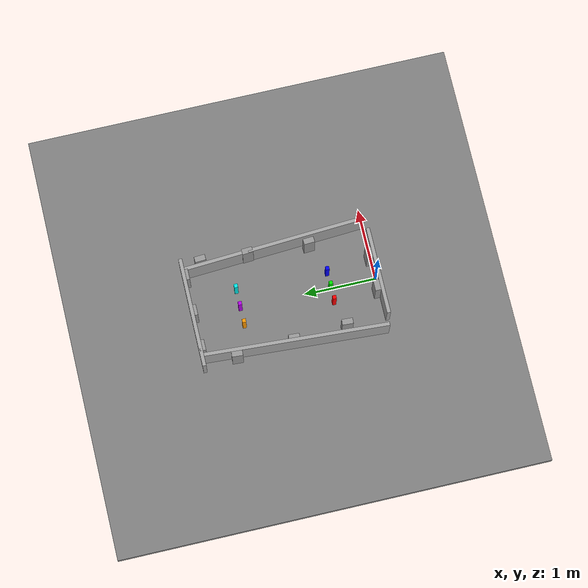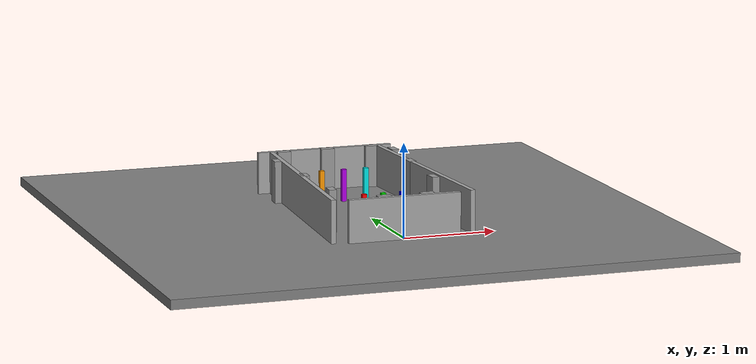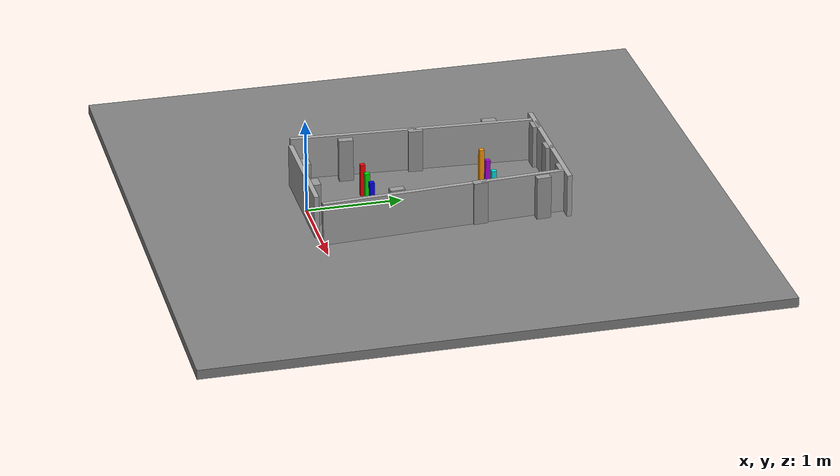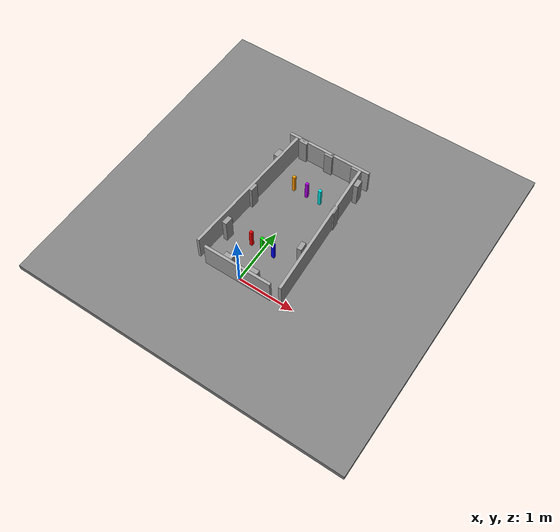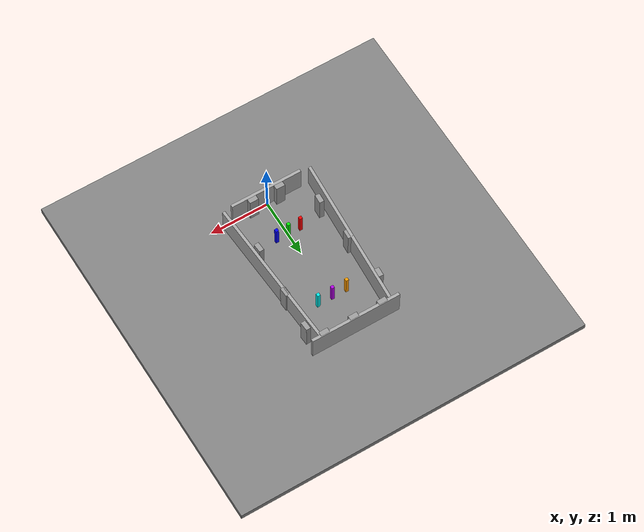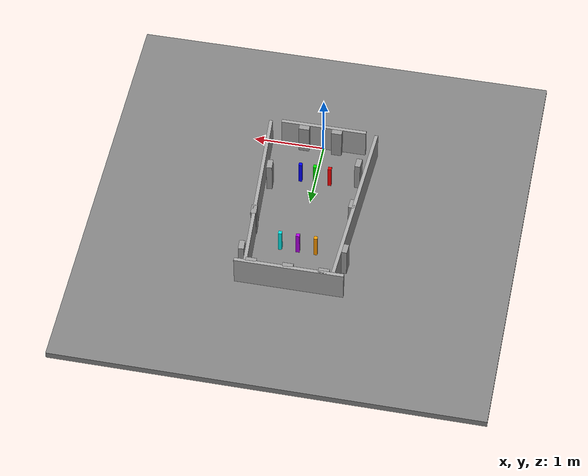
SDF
<?xml version="1.0" ?>
<sdf version="1.7">

  <world name="nav_room">

    <gravity>0 0 -9.8</gravity>
    <magnetic_field>6e-6 2.3e-5 -4.2e-5</magnetic_field>
    <atmosphere type="adiabatic"/>

    <scene>
      <ambient>0.4 0.4 0.4 1</ambient>
      <background>0.7 0.7 0.7 1</background>
      <shadows>true</shadows>
    </scene>

    <physics name='1ms' type='ignored'>
      <max_step_size>0.001</max_step_size>
      <real_time_factor>1</real_time_factor>
      <real_time_update_rate>1000</real_time_update_rate>
    </physics>

    <plugin name='gz::sim::systems::Physics' filename='gz-sim-physics-system'/>
    <plugin name='gz::sim::systems::UserCommands' filename='gz-sim-user-commands-system'/>
    <plugin name='gz::sim::systems::SceneBroadcaster' filename='gz-sim-scene-broadcaster-system'/>
    <plugin name='gz::sim::systems::Contact' filename='gz-sim-contact-system'/>
    <plugin name='gz::sim::systems::Sensors' filename='gz-sim-sensors-system'>
      <render_engine>ogre2</render_engine>
    </plugin>

    <!-- LIGHT -->

    <light name="sun_light" type="directional">
      <cast_shadows>true</cast_shadows>
      <pose>0 1.27 20 0 0 0</pose>
      <diffuse>1 1 1 1</diffuse>
      <specular>0.2 0.2 0.2 1</specular>
      <attenuation>
        <range>1000</range>
        <constant>0.9</constant>
        <linear>0.01</linear>
        <quadratic>0.001</quadratic>
      </attenuation>
      <direction>-0.5 0.1 -1</direction>
    </light>

    <!-- GROUND -->
    <!-- Smooth flat floor. Centred at (0, 1.27, -0.05) so top
         face sits at z=0. -->

    <model name="ground">
      <static>true</static>
      <pose>0 1.27 -0.05 0 0 0</pose>
      <link name="ground_link">
        <collision name="ground_collision">
          <geometry>
            <box><size>6 6 0.1</size></box>
          </geometry>
          <surface>
            <friction>
              <ode><mu>1.0</mu><mu2>1.0</mu2></ode>
            </friction>
            <contact><ode/></contact>
          </surface>
        </collision>
        <visual name="ground_visual">
          <geometry>
            <box><size>6 6 0.1</size></box>
          </geometry>
          <material>
            <ambient>0.45 0.45 0.45 1</ambient>
            <diffuse>0.5 0.5 0.5 1</diffuse>
          </material>
        </visual>
      </link>
    </model>

    <!-- South wall (narrow end, y=0) -->
    <model name="south_wall">
      <static>true</static>
      <!-- Centre x=0, y=-0.025 (outer face), z=half-height -->
      <pose>0 -0.025 0.2286 0 0 0</pose>
      <link name="link">
        <collision name="collision">
          <geometry><box><size>1.2192 0.05 0.4572</size></box></geometry>
        </collision>
        <visual name="visual">
          <geometry><box><size>1.2192 0.05 0.4572</size></box></geometry>
          <material>
            <ambient>0.55 0.55 0.55 1</ambient>
            <diffuse>0.65 0.65 0.65 1</diffuse>
          </material>
        </visual>
      </link>
    </model>

    <!-- North wall (wide end, y=2.54) -->
    <model name="north_wall">
      <static>true</static>
      <pose>0 2.565 0.2286 0 0 0</pose>
      <link name="link">
        <collision name="collision">
          <geometry><box><size>1.5240 0.05 0.4572</size></box></geometry>
        </collision>
        <visual name="visual">
          <geometry><box><size>1.5240 0.05 0.4572</size></box></geometry>
          <material>
            <ambient>0.55 0.55 0.55 1</ambient>
            <diffuse>0.65 0.65 0.65 1</diffuse>
          </material>
        </visual>
      </link>
    </model>

    <!-- West wall (angled, runs SW to NW)
         Length = 2.5446m, angle = -3.4336 deg = -0.059928 rad about Z
         Centre at (-0.6858, 1.2700) -->
    <model name="west_wall">
      <static>true</static>
      <pose>-0.6858 1.2700 0.2286 0 0 -0.059928</pose>
      <link name="link">
        <collision name="collision">
          <geometry><box><size>0.05 2.5446 0.4572</size></box></geometry>
        </collision>
        <visual name="visual">
          <geometry><box><size>0.05 2.5446 0.4572</size></box></geometry>
          <material>
            <ambient>0.55 0.55 0.55 1</ambient>
            <diffuse>0.65 0.65 0.65 1</diffuse>
          </material>
        </visual>
      </link>
    </model>

    <!-- East wall (angled, runs SE to NE)
         Same length, angle = +3.4336 deg = +0.059928 rad about Z
         Centre at (0.6858, 1.2700) -->
    <model name="east_wall">
      <static>true</static>
      <pose>0.6858 1.2700 0.2286 0 0 0.059928</pose>
      <link name="link">
        <collision name="collision">
          <geometry><box><size>0.05 2.5446 0.4572</size></box></geometry>
        </collision>
        <visual name="visual">
          <geometry><box><size>0.05 2.5446 0.4572</size></box></geometry>
          <material>
            <ambient>0.55 0.55 0.55 1</ambient>
            <diffuse>0.65 0.65 0.65 1</diffuse>
          </material>
        </visual>
      </link>
    </model>

    <!-- South wall pilasters -->
    <model name="s_pilaster_1">
      <static>true</static>
      <!-- x=-0.20, against south wall inner face y=0, protrudes inward -->
      <pose>-0.20 0.04 0.2286 0 0 0</pose>
      <link name="link">
        <collision name="collision">
          <geometry><box><size>0.15 0.08 0.4572</size></box></geometry>
        </collision>
        <visual name="visual">
          <geometry><box><size>0.15 0.08 0.4572</size></box></geometry>
          <material>
            <ambient>0.5 0.5 0.5 1</ambient>
            <diffuse>0.6 0.6 0.6 1</diffuse>
          </material>
        </visual>
      </link>
    </model>

    <model name="s_pilaster_2">
      <static>true</static>
      <pose>0.27 0.04 0.2286 0 0 0</pose>
      <link name="link">
        <collision name="collision">
          <geometry><box><size>0.15 0.08 0.4572</size></box></geometry>
        </collision>
        <visual name="visual">
          <geometry><box><size>0.15 0.08 0.4572</size></box></geometry>
          <material>
            <ambient>0.5 0.5 0.5 1</ambient>
            <diffuse>0.6 0.6 0.6 1</diffuse>
          </material>
        </visual>
      </link>
    </model>

    <!-- North wall pilasters -->
    <model name="n_pilaster_1">
      <static>true</static>
      <pose>-0.48 2.536 0.2286 0 0 0</pose>
      <link name="link">
        <collision name="collision">
          <geometry><box><size>0.15 0.08 0.4572</size></box></geometry>
        </collision>
        <visual name="visual">
          <geometry><box><size>0.15 0.08 0.4572</size></box></geometry>
          <material>
            <ambient>0.5 0.5 0.5 1</ambient>
            <diffuse>0.6 0.6 0.6 1</diffuse>
          </material>
        </visual>
      </link>
    </model>

    <model name="n_pilaster_2">
      <static>true</static>
      <pose>0.02 2.536 0.2286 0 0 0</pose>
      <link name="link">
        <collision name="collision">
          <geometry><box><size>0.15 0.08 0.4572</size></box></geometry>
        </collision>
        <visual name="visual">
          <geometry><box><size>0.15 0.08 0.4572</size></box></geometry>
          <material>
            <ambient>0.5 0.5 0.5 1</ambient>
            <diffuse>0.6 0.6 0.6 1</diffuse>
          </material>
        </visual>
      </link>
    </model>

    <model name="n_pilaster_3">
      <static>true</static>
      <pose>0.53 2.536 0.2286 0 0 0</pose>
      <link name="link">
        <collision name="collision">
          <geometry><box><size>0.15 0.08 0.4572</size></box></geometry>
        </collision>
        <visual name="visual">
          <geometry><box><size>0.15 0.08 0.4572</size></box></geometry>
          <material>
            <ambient>0.5 0.5 0.5 1</ambient>
            <diffuse>0.6 0.6 0.6 1</diffuse>
          </material>
        </visual>
      </link>
    </model>

    <model name="w_pilaster_1">
      <static>true</static>
      <pose>-0.603 0.55 0.2286 0 0 -0.059928</pose>
      <link name="link">
        <collision name="collision">
          <geometry><box><size>0.08 0.15 0.4572</size></box></geometry>
        </collision>
        <visual name="visual">
          <geometry><box><size>0.08 0.15 0.4572</size></box></geometry>
          <material>
            <ambient>0.5 0.5 0.5 1</ambient>
            <diffuse>0.6 0.6 0.6 1</diffuse>
          </material>
        </visual>
      </link>
    </model>

    <model name="w_pilaster_2">
      <static>true</static>
      <pose>-0.648 1.30 0.2286 0 0 -0.059928</pose>
      <link name="link">
        <collision name="collision">
          <geometry><box><size>0.08 0.15 0.4572</size></box></geometry>
        </collision>
        <visual name="visual">
          <geometry><box><size>0.08 0.15 0.4572</size></box></geometry>
          <material>
            <ambient>0.5 0.5 0.5 1</ambient>
            <diffuse>0.6 0.6 0.6 1</diffuse>
          </material>
        </visual>
      </link>
    </model>

    <model name="w_pilaster_3">
      <static>true</static>
      <pose>-0.696 2.10 0.2286 0 0 -0.059928</pose>
      <link name="link">
        <collision name="collision">
          <geometry><box><size>0.08 0.15 0.4572</size></box></geometry>
        </collision>
        <visual name="visual">
          <geometry><box><size>0.08 0.15 0.4572</size></box></geometry>
          <material>
            <ambient>0.5 0.5 0.5 1</ambient>
            <diffuse>0.6 0.6 0.6 1</diffuse>
          </material>
        </visual>
      </link>
    </model>

    <model name="e_pilaster_1">
      <static>true</static>
      <pose>0.618 0.80 0.2286 0 0 0.059928</pose>
      <link name="link">
        <collision name="collision">
          <geometry><box><size>0.08 0.15 0.4572</size></box></geometry>
        </collision>
        <visual name="visual">
          <geometry><box><size>0.08 0.15 0.4572</size></box></geometry>
          <material>
            <ambient>0.5 0.5 0.5 1</ambient>
            <diffuse>0.6 0.6 0.6 1</diffuse>
          </material>
        </visual>
      </link>
    </model>

    <model name="e_pilaster_2">
      <static>true</static>
      <pose>0.669 1.65 0.2286 0 0 0.059928</pose>
      <link name="link">
        <collision name="collision">
          <geometry><box><size>0.08 0.15 0.4572</size></box></geometry>
        </collision>
        <visual name="visual">
          <geometry><box><size>0.08 0.15 0.4572</size></box></geometry>
          <material>
            <ambient>0.5 0.5 0.5 1</ambient>
            <diffuse>0.6 0.6 0.6 1</diffuse>
          </material>
        </visual>
      </link>
    </model>

    <model name="e_pilaster_3">
      <static>true</static>
      <pose>0.708 2.30 0.2286 0 0 0.059928</pose>
      <link name="link">
        <collision name="collision">
          <geometry><box><size>0.08 0.15 0.4572</size></box></geometry>
        </collision>
        <visual name="visual">
          <geometry><box><size>0.08 0.15 0.4572</size></box></geometry>
          <material>
            <ambient>0.5 0.5 0.5 1</ambient>
            <diffuse>0.6 0.6 0.6 1</diffuse>
          </material>
        </visual>
      </link>
    </model>

    <model name="goal_1">
      <static>true</static>
      <pose>-0.21 0.635 0.175 0 0 0</pose>
      <link name="link">
        <collision name="collision">
          <geometry><box><size>0.05 0.05 0.35</size></box></geometry>
        </collision>
        <visual name="visual">
          <geometry><box><size>0.05 0.05 0.35</size></box></geometry>
          <material>
            <ambient>1 0 0 1</ambient>
            <diffuse>1 0 0 1</diffuse>
          </material>
        </visual>
      </link>
    </model>

    <model name="goal_2">
      <static>true</static>
      <pose>0.00 0.635 0.175 0 0 0</pose>
      <link name="link">
        <collision name="collision">
          <geometry><box><size>0.05 0.05 0.35</size></box></geometry>
        </collision>
        <visual name="visual">
          <geometry><box><size>0.05 0.05 0.35</size></box></geometry>
          <material>
            <ambient>0 0.8 0 1</ambient>
            <diffuse>0 0.9 0 1</diffuse>
          </material>
        </visual>
      </link>
    </model>

    <model name="goal_3">
      <static>true</static>
      <pose>0.21 0.635 0.175 0 0 0</pose>
      <link name="link">
        <collision name="collision">
          <geometry><box><size>0.05 0.05 0.35</size></box></geometry>
        </collision>
        <visual name="visual">
          <geometry><box><size>0.05 0.05 0.35</size></box></geometry>
          <material>
            <ambient>0 0 1 1</ambient>
            <diffuse>0 0 1 1</diffuse>
          </material>
        </visual>
      </link>
    </model>

    <model name="goal_4">
      <static>true</static>
      <pose>-0.25 1.905 0.175 0 0 0</pose>
      <link name="link">
        <collision name="collision">
          <geometry><box><size>0.05 0.05 0.35</size></box></geometry>
        </collision>
        <visual name="visual">
          <geometry><box><size>0.05 0.05 0.35</size></box></geometry>
          <material>
            <ambient>1 0.5 0 1</ambient>
            <diffuse>1 0.6 0 1</diffuse>
          </material>
        </visual>
      </link>
    </model>

    <model name="goal_5">
      <static>true</static>
      <pose>0.00 1.905 0.175 0 0 0</pose>
      <link name="link">
        <collision name="collision">
          <geometry><box><size>0.05 0.05 0.35</size></box></geometry>
        </collision>
        <visual name="visual">
          <geometry><box><size>0.05 0.05 0.35</size></box></geometry>
          <material>
            <ambient>0.6 0 0.8 1</ambient>
            <diffuse>0.7 0 0.9 1</diffuse>
          </material>
        </visual>
      </link>
    </model>

    <model name="goal_6">
      <static>true</static>
      <pose>0.25 1.905 0.175 0 0 0</pose>
      <link name="link">
        <collision name="collision">
          <geometry><box><size>0.05 0.05 0.35</size></box></geometry>
        </collision>
        <visual name="visual">
          <geometry><box><size>0.05 0.05 0.35</size></box></geometry>
          <material>
            <ambient>0 0.8 0.8 1</ambient>
            <diffuse>0 0.9 0.9 1</diffuse>
          </material>
        </visual>
      </link>
    </model>

  </world>

</sdf>
